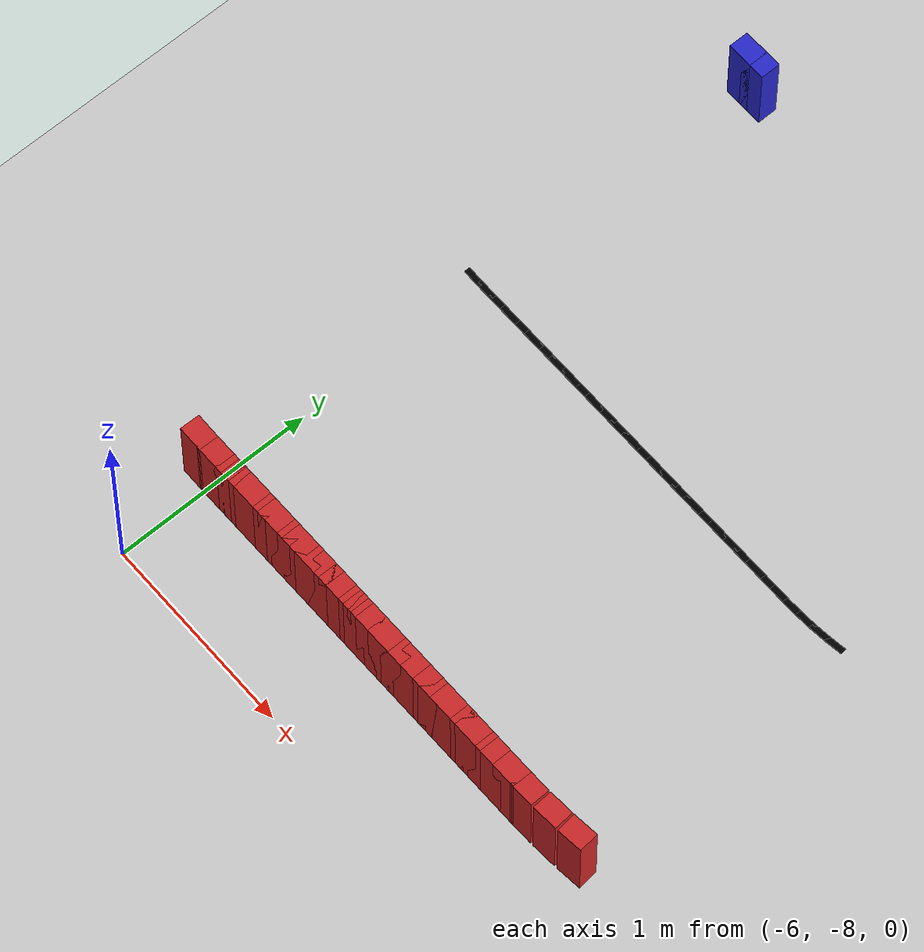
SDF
<sdf version="1.6">
 <world name="new_race_track">
  <include><uri>model://ground_plane</uri></include>
  <include><uri>model://sun</uri></include>
  <model name="iw_89">
   <static>true</static>
   <pose>-5.9600 -4.5000 0.200 0 0 0.0000</pose>
   <link name="l">
    <collision name="c"><geometry><box><size>0.1300 0.1 0.4</size></box></geometry></collision>
    <visual name="v">
     <geometry><box><size>0.1300 0.1 0.4</size></box></geometry>
     <material><ambient>0.15 0.15 0.8 1</ambient><diffuse>0.15 0.15 0.8 1</diffuse></material>
    </visual>
   </link>
  </model>
  <model name="iw_90">
   <static>true</static>
   <pose>-5.8800 -4.5000 0.200 0 0 0.0000</pose>
   <link name="l">
    <collision name="c"><geometry><box><size>0.1300 0.1 0.4</size></box></geometry></collision>
    <visual name="v">
     <geometry><box><size>0.1300 0.1 0.4</size></box></geometry>
     <material><ambient>0.15 0.15 0.8 1</ambient><diffuse>0.15 0.15 0.8 1</diffuse></material>
    </visual>
   </link>
  </model>
  <model name="ow_88">
   <static>true</static>
   <pose>-6.0705 -7.4989 0.200 0 0 -0.0201</pose>
   <link name="l">
    <collision name="c"><geometry><box><size>0.1305 0.1 0.4</size></box></geometry></collision>
    <visual name="v">
     <geometry><box><size>0.1305 0.1 0.4</size></box></geometry>
     <material><ambient>0.8 0.15 0.15 1</ambient><diffuse>0.8 0.15 0.15 1</diffuse></material>
    </visual>
   </link>
  </model>
  <model name="ow_89">
   <static>true</static>
   <pose>-5.9600 -7.5000 0.200 0 0 0.0000</pose>
   <link name="l">
    <collision name="c"><geometry><box><size>0.1300 0.1 0.4</size></box></geometry></collision>
    <visual name="v">
     <geometry><box><size>0.1300 0.1 0.4</size></box></geometry>
     <material><ambient>0.8 0.15 0.15 1</ambient><diffuse>0.8 0.15 0.15 1</diffuse></material>
    </visual>
   </link>
  </model>
  <model name="ow_90">
   <static>true</static>
   <pose>-5.8800 -7.5000 0.200 0 0 0.0000</pose>
   <link name="l">
    <collision name="c"><geometry><box><size>0.1300 0.1 0.4</size></box></geometry></collision>
    <visual name="v">
     <geometry><box><size>0.1300 0.1 0.4</size></box></geometry>
     <material><ambient>0.8 0.15 0.15 1</ambient><diffuse>0.8 0.15 0.15 1</diffuse></material>
    </visual>
   </link>
  </model>
  <model name="ow_91">
   <static>true</static>
   <pose>-5.8000 -7.5000 0.200 0 0 0.0000</pose>
   <link name="l">
    <collision name="c"><geometry><box><size>0.1300 0.1 0.4</size></box></geometry></collision>
    <visual name="v">
     <geometry><box><size>0.1300 0.1 0.4</size></box></geometry>
     <material><ambient>0.8 0.15 0.15 1</ambient><diffuse>0.8 0.15 0.15 1</diffuse></material>
    </visual>
   </link>
  </model>
  <model name="ow_92">
   <static>true</static>
   <pose>-5.7200 -7.5000 0.200 0 0 0.0000</pose>
   <link name="l">
    <collision name="c"><geometry><box><size>0.1300 0.1 0.4</size></box></geometry></collision>
    <visual name="v">
     <geometry><box><size>0.1300 0.1 0.4</size></box></geometry>
     <material><ambient>0.8 0.15 0.15 1</ambient><diffuse>0.8 0.15 0.15 1</diffuse></material>
    </visual>
   </link>
  </model>
  <model name="ow_93">
   <static>true</static>
   <pose>-5.6400 -7.5000 0.200 0 0 0.0000</pose>
   <link name="l">
    <collision name="c"><geometry><box><size>0.1300 0.1 0.4</size></box></geometry></collision>
    <visual name="v">
     <geometry><box><size>0.1300 0.1 0.4</size></box></geometry>
     <material><ambient>0.8 0.15 0.15 1</ambient><diffuse>0.8 0.15 0.15 1</diffuse></material>
    </visual>
   </link>
  </model>
  <model name="ow_94">
   <static>true</static>
   <pose>-5.5600 -7.5000 0.200 0 0 0.0000</pose>
   <link name="l">
    <collision name="c"><geometry><box><size>0.1300 0.1 0.4</size></box></geometry></collision>
    <visual name="v">
     <geometry><box><size>0.1300 0.1 0.4</size></box></geometry>
     <material><ambient>0.8 0.15 0.15 1</ambient><diffuse>0.8 0.15 0.15 1</diffuse></material>
    </visual>
   </link>
  </model>
  <model name="ow_95">
   <static>true</static>
   <pose>-5.4800 -7.5000 0.200 0 0 0.0000</pose>
   <link name="l">
    <collision name="c"><geometry><box><size>0.1300 0.1 0.4</size></box></geometry></collision>
    <visual name="v">
     <geometry><box><size>0.1300 0.1 0.4</size></box></geometry>
     <material><ambient>0.8 0.15 0.15 1</ambient><diffuse>0.8 0.15 0.15 1</diffuse></material>
    </visual>
   </link>
  </model>
  <model name="ow_96">
   <static>true</static>
   <pose>-5.4000 -7.5000 0.200 0 0 0.0000</pose>
   <link name="l">
    <collision name="c"><geometry><box><size>0.1300 0.1 0.4</size></box></geometry></collision>
    <visual name="v">
     <geometry><box><size>0.1300 0.1 0.4</size></box></geometry>
     <material><ambient>0.8 0.15 0.15 1</ambient><diffuse>0.8 0.15 0.15 1</diffuse></material>
    </visual>
   </link>
  </model>
  <model name="ow_97">
   <static>true</static>
   <pose>-5.3200 -7.5000 0.200 0 0 0.0000</pose>
   <link name="l">
    <collision name="c"><geometry><box><size>0.1300 0.1 0.4</size></box></geometry></collision>
    <visual name="v">
     <geometry><box><size>0.1300 0.1 0.4</size></box></geometry>
     <material><ambient>0.8 0.15 0.15 1</ambient><diffuse>0.8 0.15 0.15 1</diffuse></material>
    </visual>
   </link>
  </model>
  <model name="ow_98">
   <static>true</static>
   <pose>-5.2400 -7.5000 0.200 0 0 0.0000</pose>
   <link name="l">
    <collision name="c"><geometry><box><size>0.1300 0.1 0.4</size></box></geometry></collision>
    <visual name="v">
     <geometry><box><size>0.1300 0.1 0.4</size></box></geometry>
     <material><ambient>0.8 0.15 0.15 1</ambient><diffuse>0.8 0.15 0.15 1</diffuse></material>
    </visual>
   </link>
  </model>
  <model name="ow_99">
   <static>true</static>
   <pose>-5.1600 -7.5000 0.200 0 0 0.0000</pose>
   <link name="l">
    <collision name="c"><geometry><box><size>0.1300 0.1 0.4</size></box></geometry></collision>
    <visual name="v">
     <geometry><box><size>0.1300 0.1 0.4</size></box></geometry>
     <material><ambient>0.8 0.15 0.15 1</ambient><diffuse>0.8 0.15 0.15 1</diffuse></material>
    </visual>
   </link>
  </model>
  <model name="ow_100">
   <static>true</static>
   <pose>-5.0800 -7.5000 0.200 0 0 0.0000</pose>
   <link name="l">
    <collision name="c"><geometry><box><size>0.1300 0.1 0.4</size></box></geometry></collision>
    <visual name="v">
     <geometry><box><size>0.1300 0.1 0.4</size></box></geometry>
     <material><ambient>0.8 0.15 0.15 1</ambient><diffuse>0.8 0.15 0.15 1</diffuse></material>
    </visual>
   </link>
  </model>
  <model name="ow_101">
   <static>true</static>
   <pose>-5.0000 -7.5000 0.200 0 0 0.0000</pose>
   <link name="l">
    <collision name="c"><geometry><box><size>0.1300 0.1 0.4</size></box></geometry></collision>
    <visual name="v">
     <geometry><box><size>0.1300 0.1 0.4</size></box></geometry>
     <material><ambient>0.8 0.15 0.15 1</ambient><diffuse>0.8 0.15 0.15 1</diffuse></material>
    </visual>
   </link>
  </model>
  <model name="ow_102">
   <static>true</static>
   <pose>-4.9200 -7.5000 0.200 0 0 0.0000</pose>
   <link name="l">
    <collision name="c"><geometry><box><size>0.1300 0.1 0.4</size></box></geometry></collision>
    <visual name="v">
     <geometry><box><size>0.1300 0.1 0.4</size></box></geometry>
     <material><ambient>0.8 0.15 0.15 1</ambient><diffuse>0.8 0.15 0.15 1</diffuse></material>
    </visual>
   </link>
  </model>
  <model name="ow_103">
   <static>true</static>
   <pose>-4.8400 -7.5000 0.200 0 0 0.0000</pose>
   <link name="l">
    <collision name="c"><geometry><box><size>0.1300 0.1 0.4</size></box></geometry></collision>
    <visual name="v">
     <geometry><box><size>0.1300 0.1 0.4</size></box></geometry>
     <material><ambient>0.8 0.15 0.15 1</ambient><diffuse>0.8 0.15 0.15 1</diffuse></material>
    </visual>
   </link>
  </model>
  <model name="ow_104">
   <static>true</static>
   <pose>-4.7600 -7.5000 0.200 0 0 0.0000</pose>
   <link name="l">
    <collision name="c"><geometry><box><size>0.1300 0.1 0.4</size></box></geometry></collision>
    <visual name="v">
     <geometry><box><size>0.1300 0.1 0.4</size></box></geometry>
     <material><ambient>0.8 0.15 0.15 1</ambient><diffuse>0.8 0.15 0.15 1</diffuse></material>
    </visual>
   </link>
  </model>
  <model name="ow_105">
   <static>true</static>
   <pose>-4.6800 -7.5000 0.200 0 0 0.0000</pose>
   <link name="l">
    <collision name="c"><geometry><box><size>0.1300 0.1 0.4</size></box></geometry></collision>
    <visual name="v">
     <geometry><box><size>0.1300 0.1 0.4</size></box></geometry>
     <material><ambient>0.8 0.15 0.15 1</ambient><diffuse>0.8 0.15 0.15 1</diffuse></material>
    </visual>
   </link>
  </model>
  <model name="ow_106">
   <static>true</static>
   <pose>-4.6000 -7.5000 0.200 0 0 0.0000</pose>
   <link name="l">
    <collision name="c"><geometry><box><size>0.1300 0.1 0.4</size></box></geometry></collision>
    <visual name="v">
     <geometry><box><size>0.1300 0.1 0.4</size></box></geometry>
     <material><ambient>0.8 0.15 0.15 1</ambient><diffuse>0.8 0.15 0.15 1</diffuse></material>
    </visual>
   </link>
  </model>
  <model name="ow_107">
   <static>true</static>
   <pose>-4.5200 -7.5000 0.200 0 0 0.0000</pose>
   <link name="l">
    <collision name="c"><geometry><box><size>0.1300 0.1 0.4</size></box></geometry></collision>
    <visual name="v">
     <geometry><box><size>0.1300 0.1 0.4</size></box></geometry>
     <material><ambient>0.8 0.15 0.15 1</ambient><diffuse>0.8 0.15 0.15 1</diffuse></material>
    </visual>
   </link>
  </model>
  <model name="ow_108">
   <static>true</static>
   <pose>-4.4400 -7.5000 0.200 0 0 0.0000</pose>
   <link name="l">
    <collision name="c"><geometry><box><size>0.1300 0.1 0.4</size></box></geometry></collision>
    <visual name="v">
     <geometry><box><size>0.1300 0.1 0.4</size></box></geometry>
     <material><ambient>0.8 0.15 0.15 1</ambient><diffuse>0.8 0.15 0.15 1</diffuse></material>
    </visual>
   </link>
  </model>
  <model name="ow_109">
   <static>true</static>
   <pose>-4.3600 -7.5000 0.200 0 0 0.0000</pose>
   <link name="l">
    <collision name="c"><geometry><box><size>0.1300 0.1 0.4</size></box></geometry></collision>
    <visual name="v">
     <geometry><box><size>0.1300 0.1 0.4</size></box></geometry>
     <material><ambient>0.8 0.15 0.15 1</ambient><diffuse>0.8 0.15 0.15 1</diffuse></material>
    </visual>
   </link>
  </model>
  <model name="ow_110">
   <static>true</static>
   <pose>-4.2800 -7.5000 0.200 0 0 0.0000</pose>
   <link name="l">
    <collision name="c"><geometry><box><size>0.1300 0.1 0.4</size></box></geometry></collision>
    <visual name="v">
     <geometry><box><size>0.1300 0.1 0.4</size></box></geometry>
     <material><ambient>0.8 0.15 0.15 1</ambient><diffuse>0.8 0.15 0.15 1</diffuse></material>
    </visual>
   </link>
  </model>
  <model name="ow_111">
   <static>true</static>
   <pose>-4.2000 -7.5000 0.200 0 0 0.0000</pose>
   <link name="l">
    <collision name="c"><geometry><box><size>0.1300 0.1 0.4</size></box></geometry></collision>
    <visual name="v">
     <geometry><box><size>0.1300 0.1 0.4</size></box></geometry>
     <material><ambient>0.8 0.15 0.15 1</ambient><diffuse>0.8 0.15 0.15 1</diffuse></material>
    </visual>
   </link>
  </model>
  <model name="ow_112">
   <static>true</static>
   <pose>-4.1200 -7.5000 0.200 0 0 0.0000</pose>
   <link name="l">
    <collision name="c"><geometry><box><size>0.1300 0.1 0.4</size></box></geometry></collision>
    <visual name="v">
     <geometry><box><size>0.1300 0.1 0.4</size></box></geometry>
     <material><ambient>0.8 0.15 0.15 1</ambient><diffuse>0.8 0.15 0.15 1</diffuse></material>
    </visual>
   </link>
  </model>
  <model name="ow_113">
   <static>true</static>
   <pose>-4.0400 -7.5000 0.200 0 0 0.0000</pose>
   <link name="l">
    <collision name="c"><geometry><box><size>0.1300 0.1 0.4</size></box></geometry></collision>
    <visual name="v">
     <geometry><box><size>0.1300 0.1 0.4</size></box></geometry>
     <material><ambient>0.8 0.15 0.15 1</ambient><diffuse>0.8 0.15 0.15 1</diffuse></material>
    </visual>
   </link>
  </model>
  <model name="ow_114">
   <static>true</static>
   <pose>-3.9295 -7.4989 0.200 0 0 0.0201</pose>
   <link name="l">
    <collision name="c"><geometry><box><size>0.1305 0.1 0.4</size></box></geometry></collision>
    <visual name="v">
     <geometry><box><size>0.1305 0.1 0.4</size></box></geometry>
     <material><ambient>0.8 0.15 0.15 1</ambient><diffuse>0.8 0.15 0.15 1</diffuse></material>
    </visual>
   </link>
  </model>
  <model name="ow_115">
   <static>true</static>
   <pose>-3.7887 -7.4932 0.200 0 0 0.0604</pose>
   <link name="l">
    <collision name="c"><geometry><box><size>0.1305 0.1 0.4</size></box></geometry></collision>
    <visual name="v">
     <geometry><box><size>0.1305 0.1 0.4</size></box></geometry>
     <material><ambient>0.8 0.15 0.15 1</ambient><diffuse>0.8 0.15 0.15 1</diffuse></material>
    </visual>
   </link>
  </model>
  <model name="ow_116">
   <static>true</static>
   <pose>-3.6482 -7.4819 0.200 0 0 0.1007</pose>
   <link name="l">
    <collision name="c"><geometry><box><size>0.1305 0.1 0.4</size></box></geometry></collision>
    <visual name="v">
     <geometry><box><size>0.1305 0.1 0.4</size></box></geometry>
     <material><ambient>0.8 0.15 0.15 1</ambient><diffuse>0.8 0.15 0.15 1</diffuse></material>
    </visual>
   </link>
  </model>
  <model name="line_88">
   <static>true</static>
   <pose>-6.0403 -5.9992 0.002 0 0 -0.0201</pose>
   <link name="l">
    <visual name="v">
     <geometry><box><size>0.1005 0.03 0.002</size></box></geometry>
     <material><ambient>0 0 0 1</ambient><diffuse>0 0 0 1</diffuse></material>
    </visual>
   </link>
  </model>
  <model name="line_89">
   <static>true</static>
   <pose>-5.9600 -6.0000 0.002 0 0 0.0000</pose>
   <link name="l">
    <visual name="v">
     <geometry><box><size>0.1000 0.03 0.002</size></box></geometry>
     <material><ambient>0 0 0 1</ambient><diffuse>0 0 0 1</diffuse></material>
    </visual>
   </link>
  </model>
  <model name="line_90">
   <static>true</static>
   <pose>-5.8800 -6.0000 0.002 0 0 0.0000</pose>
   <link name="l">
    <visual name="v">
     <geometry><box><size>0.1000 0.03 0.002</size></box></geometry>
     <material><ambient>0 0 0 1</ambient><diffuse>0 0 0 1</diffuse></material>
    </visual>
   </link>
  </model>
  <model name="line_91">
   <static>true</static>
   <pose>-5.8000 -6.0000 0.002 0 0 0.0000</pose>
   <link name="l">
    <visual name="v">
     <geometry><box><size>0.1000 0.03 0.002</size></box></geometry>
     <material><ambient>0 0 0 1</ambient><diffuse>0 0 0 1</diffuse></material>
    </visual>
   </link>
  </model>
  <model name="line_92">
   <static>true</static>
   <pose>-5.7200 -6.0000 0.002 0 0 0.0000</pose>
   <link name="l">
    <visual name="v">
     <geometry><box><size>0.1000 0.03 0.002</size></box></geometry>
     <material><ambient>0 0 0 1</ambient><diffuse>0 0 0 1</diffuse></material>
    </visual>
   </link>
  </model>
  <model name="line_93">
   <static>true</static>
   <pose>-5.6400 -6.0000 0.002 0 0 0.0000</pose>
   <link name="l">
    <visual name="v">
     <geometry><box><size>0.1000 0.03 0.002</size></box></geometry>
     <material><ambient>0 0 0 1</ambient><diffuse>0 0 0 1</diffuse></material>
    </visual>
   </link>
  </model>
  <model name="line_94">
   <static>true</static>
   <pose>-5.5600 -6.0000 0.002 0 0 0.0000</pose>
   <link name="l">
    <visual name="v">
     <geometry><box><size>0.1000 0.03 0.002</size></box></geometry>
     <material><ambient>0 0 0 1</ambient><diffuse>0 0 0 1</diffuse></material>
    </visual>
   </link>
  </model>
  <model name="line_95">
   <static>true</static>
   <pose>-5.4800 -6.0000 0.002 0 0 0.0000</pose>
   <link name="l">
    <visual name="v">
     <geometry><box><size>0.1000 0.03 0.002</size></box></geometry>
     <material><ambient>0 0 0 1</ambient><diffuse>0 0 0 1</diffuse></material>
    </visual>
   </link>
  </model>
  <model name="line_96">
   <static>true</static>
   <pose>-5.4000 -6.0000 0.002 0 0 0.0000</pose>
   <link name="l">
    <visual name="v">
     <geometry><box><size>0.1000 0.03 0.002</size></box></geometry>
     <material><ambient>0 0 0 1</ambient><diffuse>0 0 0 1</diffuse></material>
    </visual>
   </link>
  </model>
  <model name="line_97">
   <static>true</static>
   <pose>-5.3200 -6.0000 0.002 0 0 0.0000</pose>
   <link name="l">
    <visual name="v">
     <geometry><box><size>0.1000 0.03 0.002</size></box></geometry>
     <material><ambient>0 0 0 1</ambient><diffuse>0 0 0 1</diffuse></material>
    </visual>
   </link>
  </model>
  <model name="line_98">
   <static>true</static>
   <pose>-5.2400 -6.0000 0.002 0 0 0.0000</pose>
   <link name="l">
    <visual name="v">
     <geometry><box><size>0.1000 0.03 0.002</size></box></geometry>
     <material><ambient>0 0 0 1</ambient><diffuse>0 0 0 1</diffuse></material>
    </visual>
   </link>
  </model>
  <model name="line_99">
   <static>true</static>
   <pose>-5.1600 -6.0000 0.002 0 0 0.0000</pose>
   <link name="l">
    <visual name="v">
     <geometry><box><size>0.1000 0.03 0.002</size></box></geometry>
     <material><ambient>0 0 0 1</ambient><diffuse>0 0 0 1</diffuse></material>
    </visual>
   </link>
  </model>
  <model name="line_100">
   <static>true</static>
   <pose>-5.0800 -6.0000 0.002 0 0 0.0000</pose>
   <link name="l">
    <visual name="v">
     <geometry><box><size>0.1000 0.03 0.002</size></box></geometry>
     <material><ambient>0 0 0 1</ambient><diffuse>0 0 0 1</diffuse></material>
    </visual>
   </link>
  </model>
  <model name="line_101">
   <static>true</static>
   <pose>-5.0000 -6.0000 0.002 0 0 0.0000</pose>
   <link name="l">
    <visual name="v">
     <geometry><box><size>0.1000 0.03 0.002</size></box></geometry>
     <material><ambient>0 0 0 1</ambient><diffuse>0 0 0 1</diffuse></material>
    </visual>
   </link>
  </model>
  <model name="line_102">
   <static>true</static>
   <pose>-4.9200 -6.0000 0.002 0 0 0.0000</pose>
   <link name="l">
    <visual name="v">
     <geometry><box><size>0.1000 0.03 0.002</size></box></geometry>
     <material><ambient>0 0 0 1</ambient><diffuse>0 0 0 1</diffuse></material>
    </visual>
   </link>
  </model>
  <model name="line_103">
   <static>true</static>
   <pose>-4.8400 -6.0000 0.002 0 0 0.0000</pose>
   <link name="l">
    <visual name="v">
     <geometry><box><size>0.1000 0.03 0.002</size></box></geometry>
     <material><ambient>0 0 0 1</ambient><diffuse>0 0 0 1</diffuse></material>
    </visual>
   </link>
  </model>
  <model name="line_104">
   <static>true</static>
   <pose>-4.7600 -6.0000 0.002 0 0 0.0000</pose>
   <link name="l">
    <visual name="v">
     <geometry><box><size>0.1000 0.03 0.002</size></box></geometry>
     <material><ambient>0 0 0 1</ambient><diffuse>0 0 0 1</diffuse></material>
    </visual>
   </link>
  </model>
  <model name="line_105">
   <static>true</static>
   <pose>-4.6800 -6.0000 0.002 0 0 0.0000</pose>
   <link name="l">
    <visual name="v">
     <geometry><box><size>0.1000 0.03 0.002</size></box></geometry>
     <material><ambient>0 0 0 1</ambient><diffuse>0 0 0 1</diffuse></material>
    </visual>
   </link>
  </model>
  <model name="line_106">
   <static>true</static>
   <pose>-4.6000 -6.0000 0.002 0 0 0.0000</pose>
   <link name="l">
    <visual name="v">
     <geometry><box><size>0.1000 0.03 0.002</size></box></geometry>
     <material><ambient>0 0 0 1</ambient><diffuse>0 0 0 1</diffuse></material>
    </visual>
   </link>
  </model>
  <model name="line_107">
   <static>true</static>
   <pose>-4.5200 -6.0000 0.002 0 0 0.0000</pose>
   <link name="l">
    <visual name="v">
     <geometry><box><size>0.1000 0.03 0.002</size></box></geometry>
     <material><ambient>0 0 0 1</ambient><diffuse>0 0 0 1</diffuse></material>
    </visual>
   </link>
  </model>
  <model name="line_108">
   <static>true</static>
   <pose>-4.4400 -6.0000 0.002 0 0 0.0000</pose>
   <link name="l">
    <visual name="v">
     <geometry><box><size>0.1000 0.03 0.002</size></box></geometry>
     <material><ambient>0 0 0 1</ambient><diffuse>0 0 0 1</diffuse></material>
    </visual>
   </link>
  </model>
  <model name="line_109">
   <static>true</static>
   <pose>-4.3600 -6.0000 0.002 0 0 0.0000</pose>
   <link name="l">
    <visual name="v">
     <geometry><box><size>0.1000 0.03 0.002</size></box></geometry>
     <material><ambient>0 0 0 1</ambient><diffuse>0 0 0 1</diffuse></material>
    </visual>
   </link>
  </model>
  <model name="line_110">
   <static>true</static>
   <pose>-4.2800 -6.0000 0.002 0 0 0.0000</pose>
   <link name="l">
    <visual name="v">
     <geometry><box><size>0.1000 0.03 0.002</size></box></geometry>
     <material><ambient>0 0 0 1</ambient><diffuse>0 0 0 1</diffuse></material>
    </visual>
   </link>
  </model>
  <model name="line_111">
   <static>true</static>
   <pose>-4.2000 -6.0000 0.002 0 0 0.0000</pose>
   <link name="l">
    <visual name="v">
     <geometry><box><size>0.1000 0.03 0.002</size></box></geometry>
     <material><ambient>0 0 0 1</ambient><diffuse>0 0 0 1</diffuse></material>
    </visual>
   </link>
  </model>
  <model name="line_112">
   <static>true</static>
   <pose>-4.1200 -6.0000 0.002 0 0 0.0000</pose>
   <link name="l">
    <visual name="v">
     <geometry><box><size>0.1000 0.03 0.002</size></box></geometry>
     <material><ambient>0 0 0 1</ambient><diffuse>0 0 0 1</diffuse></material>
    </visual>
   </link>
  </model>
  <model name="line_113">
   <static>true</static>
   <pose>-4.0400 -6.0000 0.002 0 0 0.0000</pose>
   <link name="l">
    <visual name="v">
     <geometry><box><size>0.1000 0.03 0.002</size></box></geometry>
     <material><ambient>0 0 0 1</ambient><diffuse>0 0 0 1</diffuse></material>
    </visual>
   </link>
  </model>
  <model name="line_114">
   <static>true</static>
   <pose>-3.9597 -5.9992 0.002 0 0 0.0201</pose>
   <link name="l">
    <visual name="v">
     <geometry><box><size>0.1005 0.03 0.002</size></box></geometry>
     <material><ambient>0 0 0 1</ambient><diffuse>0 0 0 1</diffuse></material>
    </visual>
   </link>
  </model>
  <model name="line_115">
   <static>true</static>
   <pose>-3.8793 -5.9959 0.002 0 0 0.0604</pose>
   <link name="l">
    <visual name="v">
     <geometry><box><size>0.1005 0.03 0.002</size></box></geometry>
     <material><ambient>0 0 0 1</ambient><diffuse>0 0 0 1</diffuse></material>
    </visual>
   </link>
  </model>
  <model name="line_116">
   <static>true</static>
   <pose>-3.7990 -5.9895 0.002 0 0 0.1007</pose>
   <link name="l">
    <visual name="v">
     <geometry><box><size>0.1005 0.03 0.002</size></box></geometry>
     <material><ambient>0 0 0 1</ambient><diffuse>0 0 0 1</diffuse></material>
    </visual>
   </link>
  </model>
  <model name="line_117">
   <static>true</static>
   <pose>-3.7191 -5.9798 0.002 0 0 0.1410</pose>
   <link name="l">
    <visual name="v">
     <geometry><box><size>0.1005 0.03 0.002</size></box></geometry>
     <material><ambient>0 0 0 1</ambient><diffuse>0 0 0 1</diffuse></material>
    </visual>
   </link>
  </model>
 </world>
</sdf>
